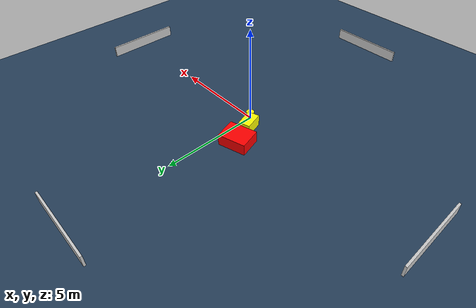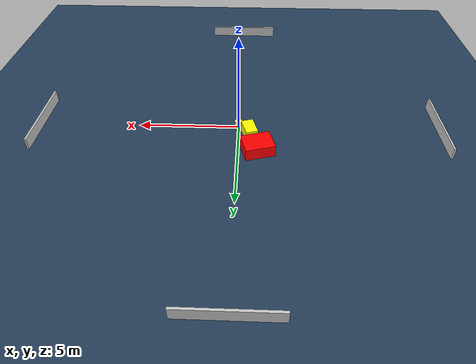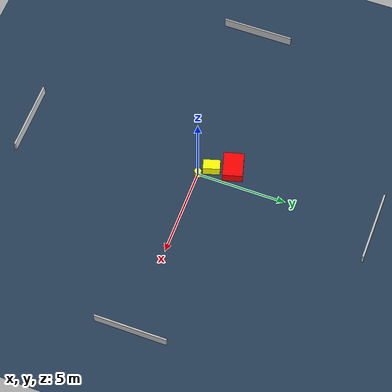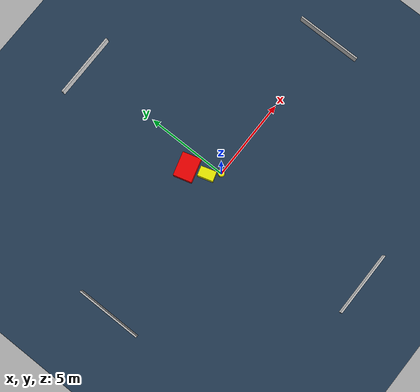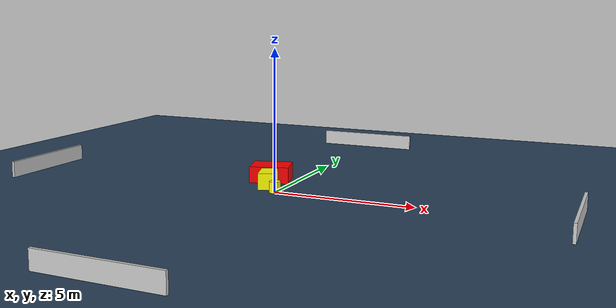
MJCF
<?xml version="1.0" ?>
<mujoco model="generated_environment">
  <option timestep="0.01" integrator="RK4" cone="elliptic"/>
  <default>
    <geom density="1"/>
  </default>
  <asset>
    <texture builtin="gradient" height="3072" name="skybox" rgb1="0.3 0.5 0.7" rgb2="0 0 0" type="skybox" width="512"/>
    <texture builtin="checker" height="300" name="groundplane" rgb1="0.2 0.3 0.4" rgb2="0.1 0.2 0.3" type="2d" width="300"/>
    <material name="groundplane" reflectance="0.2" texrepeat="5 5" texture="groundplane"/>
  </asset>
  <worldbody>
    <light dir="0 0 -1" directional="true" pos="0 0 1.5"/>
    <geom condim="3" friction="0.5 0.005 0.001" material="groundplane" name="floor" pos="0 0 0" size="0 0 0.05" type="plane"/>
    <body name="walls">
      <geom name="wall_1" condim="4" pos="-10.0 0.0 0.3" rgba="0.800000011920929 0.800000011920929 0.800000011920929 1.0" size="0.05 2.0 0.3" type="box"/>
      <geom name="wall_2" condim="4" pos="10.0 0.0 0.3" rgba="0.800000011920929 0.800000011920929 0.800000011920929 1.0" size="0.05 2.0 0.3" type="box"/>
      <geom name="wall_3" condim="4" pos="0.0 -10.0 0.3" rgba="0.800000011920929 0.800000011920929 0.800000011920929 1.0" size="2.0 0.05 0.3" type="box"/>
      <geom name="wall_4" condim="4" pos="0.0 10.0 0.3" rgba="0.800000011920929 0.800000011920929 0.800000011920929 1.0" size="2.0 0.05 0.3" type="box"/>
    </body>
    <body name="robot">
      <joint name="joint_x" type="slide" pos="0 0 0" axis="1 0 0"/>
      <joint name="joint_y" type="slide" pos="0 0 0" axis="0 1 0"/>
      <geom name="robot" type="cylinder" pos="0.0 0.0 0.2" size="0.2 0.2 0.0" mass="5.0" friction="1.0 0.005 0.0001" condim="4" rgba="1.0 1.0 0.0 1.0"/>
    </body>
    <body name="obstacle_1_movable">
      <geom name="obstacle_1_movable" condim="4" pos="-0.5469290326702182 0.5954762390571186 0.3" euler="0 0 286.6119143300808" friction="0.0 0.005 0.001" rgba="1.0 1.0 0.0 1.0" size="0.4729107480327351 0.29833561678857096 0.3" type="box" mass="0.1"/>
      <joint type="free"/>
    </body>
    <body name="obstacle_2_static">
      <geom name="obstacle_2_static" condim="4" pos="-0.9493825113569385 1.7047805789603514 0.3" euler="0 0 15.70905662790456" friction="0.0 0.005 0.001" rgba="1.0 0.0 0.0 1.0" size="0.722461275513373 0.5614750199221098 0.3" type="box"/>
    </body>
  </worldbody>
  <actuator>
    <motor name="actuator_x" joint="joint_x" gear="1" ctrlrange="-1 1"/>
    <motor name="actuator_y" joint="joint_y" gear="1" ctrlrange="-1 1"/>
  </actuator>
</mujoco>
